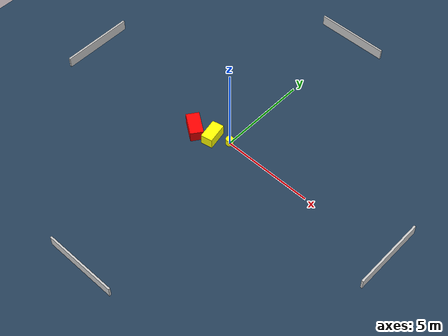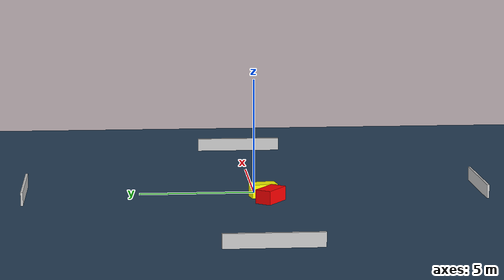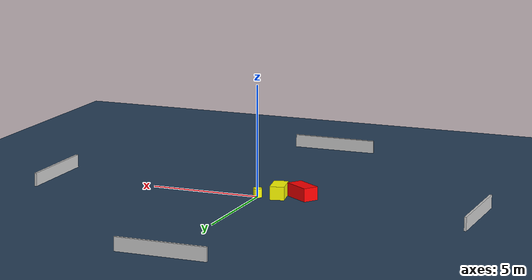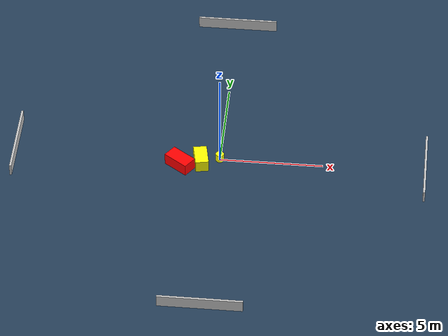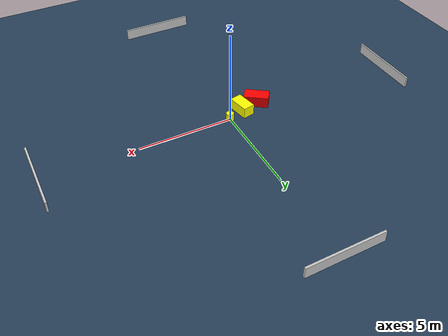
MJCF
<?xml version="1.0" ?>
<mujoco model="generated_environment">
  <option timestep="0.01" integrator="RK4" cone="elliptic"/>
  <default>
    <geom density="1"/>
  </default>
  <asset>
    <texture builtin="gradient" height="3072" name="skybox" rgb1="0.3 0.5 0.7" rgb2="0 0 0" type="skybox" width="512"/>
    <texture builtin="checker" height="300" name="groundplane" rgb1="0.2 0.3 0.4" rgb2="0.1 0.2 0.3" type="2d" width="300"/>
    <material name="groundplane" reflectance="0.2" texrepeat="5 5" texture="groundplane"/>
  </asset>
  <worldbody>
    <light dir="0 0 -1" directional="true" pos="0 0 1.5"/>
    <geom condim="3" friction="0.5 0.005 0.001" material="groundplane" name="floor" pos="0 0 0" size="0 0 0.05" type="plane"/>
    <body name="walls">
      <geom name="wall_1" condim="4" pos="-10.0 0.0 0.3" rgba="0.800000011920929 0.800000011920929 0.800000011920929 1.0" size="0.05 2.0 0.3" type="box"/>
      <geom name="wall_2" condim="4" pos="10.0 0.0 0.3" rgba="0.800000011920929 0.800000011920929 0.800000011920929 1.0" size="0.05 2.0 0.3" type="box"/>
      <geom name="wall_3" condim="4" pos="0.0 -10.0 0.3" rgba="0.800000011920929 0.800000011920929 0.800000011920929 1.0" size="2.0 0.05 0.3" type="box"/>
      <geom name="wall_4" condim="4" pos="0.0 10.0 0.3" rgba="0.800000011920929 0.800000011920929 0.800000011920929 1.0" size="2.0 0.05 0.3" type="box"/>
    </body>
    <body name="robot">
      <joint name="joint_x" type="slide" pos="0 0 0" axis="1 0 0"/>
      <joint name="joint_y" type="slide" pos="0 0 0" axis="0 1 0"/>
      <geom name="robot" type="cylinder" pos="0.0 0.0 0.2" size="0.2 0.2 0.0" mass="5.0" friction="1.0 0.005 0.0001" condim="4" rgba="1.0 1.0 0.0 1.0"/>
    </body>
    <body name="obstacle_1_movable">
      <geom name="obstacle_1_movable" condim="4" pos="-0.8904232127014398 -0.3317218945167991 0.3" euler="0 0 101.07111091672051" friction="0.0 0.005 0.001" rgba="1.0 1.0 0.0 1.0" size="0.5673848988870566 0.3223839212063399 0.3" type="box" mass="0.1"/>
      <joint type="free"/>
    </body>
    <body name="obstacle_2_static">
      <geom name="obstacle_2_static" condim="4" pos="-1.8994764797163928 -0.5831556600485566 0.3" euler="0 0 324.52715400483976" friction="0.0 0.005 0.001" rgba="1.0 0.0 0.0 1.0" size="0.6611238934188819 0.3543333090333537 0.3" type="box"/>
    </body>
  </worldbody>
  <actuator>
    <motor name="actuator_x" joint="joint_x" gear="1" ctrlrange="-1 1"/>
    <motor name="actuator_y" joint="joint_y" gear="1" ctrlrange="-1 1"/>
  </actuator>
</mujoco>
